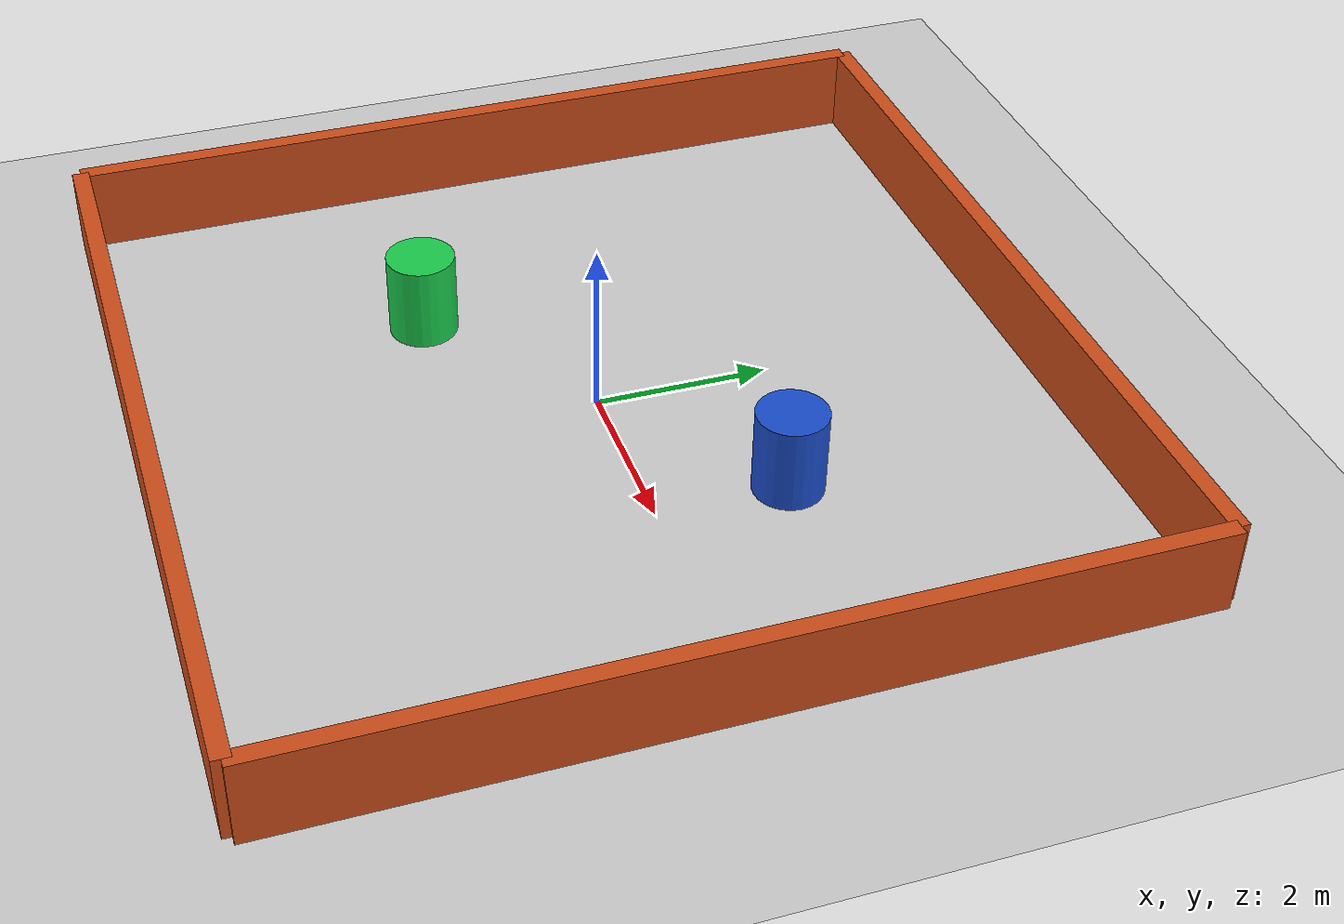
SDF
<?xml version="1.0" ?>
<sdf version="1.6">
  <world name="apex_arena">
    <!-- Ground Plane -->
    <include>
      <uri>model://ground_plane</uri>
    </include>

    <!-- Global Sun Light -->
    <include>
      <uri>model://sun</uri>
    </include>

    <!-- Physics Configuration -->
    <physics type="ode">
      <real_time_update_rate>1000.0</real_time_update_rate>
      <max_step_size>0.001</max_step_size>
      <real_time_factor>1</real_time_factor>
    </physics>

    <!-- North Wall -->
    <model name="north_wall">
      <static>true</static>
      <pose>0 5 0.5 0 0 0</pose>
      <link name="link">
        <collision name="collision">
          <geometry><box><size>10 0.2 1.0</size></box></geometry>
        </collision>
        <visual name="visual">
          <geometry><box><size>10 0.2 1.0</size></box></geometry>
          <material><ambient>0.8 0.3 0.1 1</ambient></material>
        </visual>
      </link>
    </model>

    <!-- South Wall -->
    <model name="south_wall">
      <static>true</static>
      <pose>0 -5 0.5 0 0 0</pose>
      <link name="link">
        <collision name="collision">
          <geometry><box><size>10 0.2 1.0</size></box></geometry>
        </collision>
        <visual name="visual">
          <geometry><box><size>10 0.2 1.0</size></box></geometry>
          <material><ambient>0.8 0.3 0.1 1</ambient></material>
        </visual>
      </link>
    </model>

    <!-- East Wall -->
    <model name="east_wall">
      <static>true</static>
      <pose>5 0 0.5 0 0 0</pose>
      <link name="link">
        <collision name="collision">
          <geometry><box><size>0.2 10 1.0</size></box></geometry>
        </collision>
        <visual name="visual">
          <geometry><box><size>0.2 10 1.0</size></box></geometry>
          <material><ambient>0.8 0.3 0.1 1</ambient></material>
        </visual>
      </link>
    </model>

    <!-- West Wall -->
    <model name="west_wall">
      <static>true</static>
      <pose>-5 0 0.5 0 0 0</pose>
      <link name="link">
        <collision name="collision">
          <geometry><box><size>0.2 10 1.0</size></box></geometry>
        </collision>
        <visual name="visual">
          <geometry><box><size>0.2 10 1.0</size></box></geometry>
          <material><ambient>0.8 0.3 0.1 1</ambient></material>
        </visual>
      </link>
    </model>

    <!-- Obstacle Pillar 1 -->
    <model name="obstacle_pillar_1">
      <static>true</static>
      <pose>2 1.5 0.5 0 0 0</pose>
      <link name="link">
        <collision name="collision">
          <geometry><cylinder><radius>0.4</radius><length>1.0</length></cylinder></geometry>
        </collision>
        <visual name="visual">
          <geometry><cylinder><radius>0.4</radius><length>1.0</length></cylinder></geometry>
          <material><ambient>0.1 0.3 0.8 1</ambient></material>
        </visual>
      </link>
    </model>

    <!-- Obstacle Pillar 2 -->
    <model name="obstacle_pillar_2">
      <static>true</static>
      <pose>-2 -1.5 0.5 0 0 0</pose>
      <link name="link">
        <collision name="collision">
          <geometry><cylinder><radius>0.4</radius><length>1.0</length></cylinder></geometry>
        </collision>
        <visual name="visual">
          <geometry><cylinder><radius>0.4</radius><length>1.0</length></cylinder></geometry>
          <material><ambient>0.1 0.8 0.3 1</ambient></material>
        </visual>
      </link>
    </model>

  </world>
</sdf>
